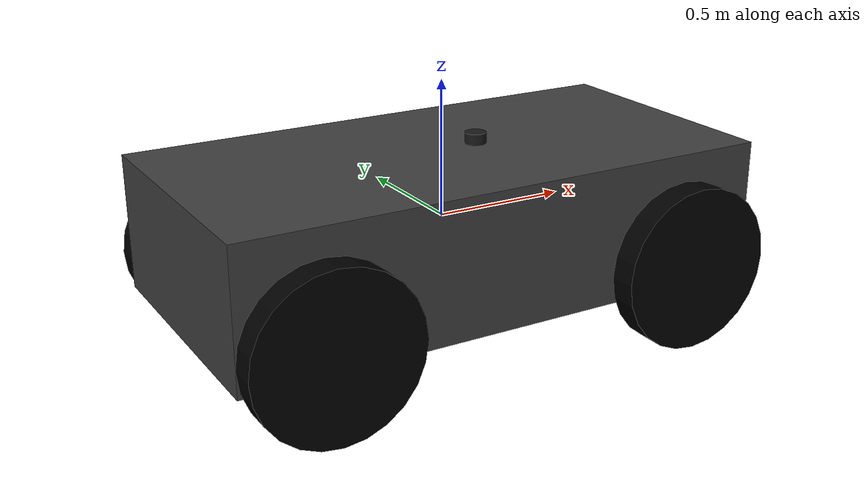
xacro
<?xml version="1.0"?>

<robot name="ackermann_steering_vehicle" xmlns:xacro="http://www.ros.org/wiki/xacro">

  <!-- Arguments -->
  <xacro:arg name="body_length" default="2.0" />
  <xacro:arg name="body_width" default="1.0" />
  <xacro:arg name="body_height" default="0.5" />
  <xacro:arg name="body_density" default="1000.0" />
  <xacro:arg name="wheel_radius" default="0.3" />
  <xacro:arg name="wheel_width" default="0.1" />
  <xacro:arg name="wheel_density" default="1000.0" />
  <xacro:arg name="max_steering_angle" default="0.6108" />
  <xacro:arg name="max_steering_angular_velocity" default="1.570796" />
  <xacro:arg name="max_steering_effort" default="1.0" />
  <xacro:arg name="max_velocity" default="1.0" />
  <xacro:arg name="max_effort" default="10.0" />

  <xacro:arg name="lidar_height" default="0.05" />
  <xacro:arg name="lidar_radius" default="0.04" />
  <xacro:arg name="lidar_update_rate" default="10.0" />
  <xacro:arg name="lidar_samples" default="720" />
  <xacro:arg name="lidar_min_angle" default="-3.14159265" />
  <xacro:arg name="lidar_max_angle" default="3.14159265" />
  <xacro:arg name="lidar_min_range" default="0.10" />
  <xacro:arg name="lidar_max_range" default="30.0" />

  <!-- Mathematical Constants -->
  <xacro:property name="PI" value="3.14159265"/>

  <!-- Vehicle Properties -->
  <xacro:property name="body_length" value="$(arg body_length)"/>
  <xacro:property name="body_width" value="$(arg body_width)"/>
  <xacro:property name="body_height" value="$(arg body_height)"/>
  <xacro:property name="body_density" value="$(arg body_density)"/>
  <xacro:property name="wheel_radius" value="$(arg wheel_radius)"/>
  <xacro:property name="wheel_width" value="$(arg wheel_width)"/>
  <xacro:property name="wheel_density" value="$(arg wheel_density)"/>
  <xacro:property name="max_steering_angle" value="$(arg max_steering_angle)"/>
  <xacro:property name="max_steering_angular_velocity" value="$(arg max_steering_angular_velocity)"/>
  <xacro:property name="max_steering_effort" value="$(arg max_steering_effort)"/>
  <xacro:property name="max_velocity" value="$(arg max_velocity)"/>
  <xacro:property name="max_effort" value="$(arg max_effort)"/>

  <xacro:property name="body_mass" value="${body_density * body_length * body_height * body_width}"/>
  <xacro:property name="body_inertia_x" value="${1.0/12.0 * body_mass * (body_height*body_height + body_width*body_width)}"/>
  <xacro:property name="body_inertia_y" value="${1.0/12.0 * body_mass * (body_length*body_length + body_height*body_height)}"/>
  <xacro:property name="body_inertia_z" value="${1.0/12.0 * body_mass * (body_length*body_length + body_width*body_width)}"/>
  <xacro:property name="wheel_separation" value="${body_width + wheel_width}"/>
  <xacro:property name="wheel_offset" value="${body_length/2 - wheel_radius}"/>
  <xacro:property name="wheel_mass" value="${wheel_density * PI * wheel_radius * wheel_radius * wheel_width}"/>
  <xacro:property name="wheel_inertia_x" value="${1.0/12.0 * wheel_mass * (3*wheel_radius*wheel_radius + wheel_width*wheel_width)}"/>
  <xacro:property name="wheel_inertia_y" value="${1.0/12.0 * wheel_mass * (3*wheel_radius*wheel_radius + wheel_width*wheel_width)}"/>
  <xacro:property name="wheel_inertia_z" value="${1.0/2.0 * wheel_mass * wheel_radius * wheel_radius}"/>
  <xacro:property name="max_wheel_angular_velocity" value="${max_velocity / wheel_radius}"/>

  <xacro:property name="lidar_height" value="$(arg lidar_height)"/>
  <xacro:property name="lidar_radius" value="$(arg lidar_radius)"/>
  <xacro:property name="lidar_update_rate" value="$(arg lidar_update_rate)"/>
  <xacro:property name="lidar_samples" value="$(arg lidar_samples)"/>
  <xacro:property name="lidar_min_angle" value="$(arg lidar_min_angle)"/>
  <xacro:property name="lidar_max_angle" value="$(arg lidar_max_angle)"/>
  <xacro:property name="lidar_min_range" value="$(arg lidar_min_range)"/>
  <xacro:property name="lidar_max_range" value="$(arg lidar_max_range)"/>

  <!-- Links -->

  <!-- Body Link -->
  <link name="body_link">
    <visual>
      <origin xyz="0.0 0.0 0.0" rpy="0.0 0.0 0.0"/>
      <geometry>
        <box size="${body_length} ${body_width} ${body_height}"/>
      </geometry>
      <material name="body_material">
        <color rgba="0.25 0.25 0.25 1.0"/>
      </material>
    </visual>
    <collision>
      <origin xyz="0.0 0.0 0.0" rpy="0.0 0.0 0.0"/>
      <geometry>
        <box size="${body_length} ${body_width} ${body_height}"/>
      </geometry>
    </collision>
    <inertial>
      <mass value="${body_mass}"/>
      <inertia ixx="${body_inertia_x}" ixy="0.0" ixz="0.0" iyy="${body_inertia_y}" iyz="0" izz="${body_inertia_z}"/>
      <origin xyz="0 0 0" rpy="0 0 0"/>
    </inertial>
  </link>

  <!-- Front Left Wheel -->
  <link name="front_left_wheel_link">
    <visual>
      <origin xyz="0.0 0.0 0.0" rpy="1.570795 0.0 0.0"/>
      <geometry>
        <cylinder radius="${wheel_radius}" length="${wheel_width}"/>
      </geometry>
      <material name="wheel_material">
        <color rgba="0.0 0.0 0.0 1.0"/>
      </material>
    </visual>
    <collision>
      <origin xyz="0.0 0.0 0.0" rpy="1.570795 0.0 0.0"/>
      <geometry>
        <cylinder radius="${wheel_radius}" length="${wheel_width}"/>
      </geometry>
    </collision>
    <inertial>
      <mass value="${wheel_mass}"/>
      <inertia ixx="${wheel_inertia_x}" ixy="0.0" ixz="0.0" iyy="${wheel_inertia_y}" iyz="0" izz="${wheel_inertia_z}"/>
      <origin xyz="0.0 0.0 0.0" rpy="1.570795 0.0 0.0"/>
    </inertial>
  </link>

    <!-- Front Left Wheel Steering -->
  <link name="front_left_steering_link">
    <visual>
      <origin xyz="0.0 0.0 0.0" rpy="1.570795 0.0 0.0"/>
      <geometry>
        <cylinder length="0.001" radius="0.01"/>
      </geometry>
      <material name="wheel_material">
        <color rgba="0.0 0.0 0.0 1.0"/>
      </material>
    </visual>
    <collision>
      <origin xyz="0.0 0.0 0.0" rpy="1.570795 0.0 0.0"/>
      <geometry>
        <cylinder length="0.001" radius="0.01"/>
      </geometry>
    </collision>
    <inertial>
      <mass value="0.01"/>
      <inertia ixx="0.0" ixy="0.0" ixz="0.0" iyy="0.0" iyz="0.0" izz="0.0"/>
      <origin xyz="0.0 0.0 0.0" rpy="1.570795 0.0 0.0"/>
    </inertial>
  </link>

  <!-- Front Right Wheel -->
  <link name="front_right_wheel_link">
    <visual>
      <origin xyz="0.0 0.0 0.0" rpy="1.570795 0.0 0.0"/>
      <geometry>
        <cylinder radius="${wheel_radius}" length="${wheel_width}"/>
      </geometry>
      <material name="wheel_material">
        <color rgba="0.0 0.0 0.0 1.0"/>
      </material>
    </visual>
    <collision>
      <origin xyz="0.0 0.0 0.0" rpy="1.570795 0.0 0.0"/>
      <geometry>
        <cylinder radius="${wheel_radius}" length="${wheel_width}"/>
      </geometry>
    </collision>
    <inertial>
      <mass value="${wheel_mass}"/>
      <inertia ixx="${wheel_inertia_x}" ixy="0.0" ixz="0.0" iyy="${wheel_inertia_y}" iyz="0" izz="${wheel_inertia_z}"/>
      <origin xyz="0.0 0.0 0.0" rpy="1.570795 0.0 0.0"/>
    </inertial>
  </link>

  <!-- Front Right Wheel Steering -->
  <link name="front_right_steering_link">
    <visual>
      <origin xyz="0.0 0.0 0.0" rpy="1.570795 0.0 0.0"/>
      <geometry>
        <cylinder length="0.001" radius="0.01"/>
      </geometry>
      <material name="wheel_material">
        <color rgba="0.0 0.0 0.0 1.0"/>
      </material>
    </visual>
    <collision>
      <origin xyz="0.0 0.0 0.0" rpy="1.570795 0.0 0.0"/>
      <geometry>
        <cylinder length="0.001" radius="0.01"/>
      </geometry>
    </collision>
    <inertial>
      <mass value="0.01"/>
      <inertia ixx="0.0" ixy="0.0" ixz="0.0" iyy="0.0" iyz="0.0" izz="0.0"/>
      <origin xyz="0.0 0.0 0.0" rpy="1.570795 0.0 0.0"/>
    </inertial>
  </link>

  <!-- Rear Left Wheel -->
  <link name="rear_left_wheel_link">
    <visual>
      <origin xyz="0.0 0.0 0.0" rpy="1.570795 0.0 0.0"/>
      <geometry>
        <cylinder radius="${wheel_radius}" length="${wheel_width}"/>
      </geometry>
      <material name="wheel_material">
        <color rgba="0.0 0.0 0.0 1.0"/>
      </material>
    </visual>
    <collision>
      <origin xyz="0.0 0.0 0.0" rpy="1.570795 0.0 0.0"/>
      <geometry>
        <cylinder radius="${wheel_radius}" length="${wheel_width}"/>
      </geometry>
    </collision>
    <inertial>
      <mass value="2"/>
      <inertia ixx="${wheel_inertia_x}" ixy="0.0" ixz="0.0" iyy="${wheel_inertia_y}" iyz="0" izz="${wheel_inertia_z}"/>
      <origin xyz="0.0 0.0 0.0" rpy="1.570795 0.0 0.0"/>
    </inertial>
  </link>

  <!-- Rear Right Wheel -->
  <link name="rear_right_wheel_link">
    <visual>
      <origin xyz="0.0 0.0 0.0" rpy="1.570795 0.0 0.0"/>
      <geometry>
        <cylinder radius="${wheel_radius}" length="${wheel_width}"/>
      </geometry>
      <material name="wheel_material">
        <color rgba="0.0 0.0 0.0 1.0"/>
      </material>
    </visual>
    <collision>
      <origin xyz="0.0 0.0 0.0" rpy="1.570795 0.0 0.0"/>
      <geometry>
        <cylinder radius="${wheel_radius}" length="${wheel_width}"/>
      </geometry>
    </collision>
    <inertial>
      <mass value="2"/>
      <inertia ixx="${wheel_inertia_x}" ixy="0.0" ixz="0.0" iyy="${wheel_inertia_y}" iyz="0" izz="${wheel_inertia_z}"/>
      <origin xyz="0.0 0.0 0.0" rpy="1.570795 0.0 0.0"/>
    </inertial>
  </link>

    <!-- Lidar -->

  <link name="lidar_link">
    <visual>
      <origin xyz="0 0 0" rpy="0 0 0"/>
      <geometry>
        <cylinder radius="${lidar_radius}" length="0.04"/>
      </geometry>
      <material name="lidar_material">
        <color rgba="0.1 0.1 0.1 1.0"/>
      </material>
    </visual>

    <collision>
      <origin xyz="0 0 0" rpy="0 0 0"/>
      <geometry>
        <cylinder radius="${lidar_radius}" length="0.06"/>
      </geometry>
    </collision>

    <inertial>
      <mass value="0.1"/>
      <origin xyz="0 0 0" rpy="0 0 0"/>
      <inertia ixx="1e-4" ixy="0" ixz="0" iyy="1e-4" iyz="0" izz="1e-4"/>
    </inertial>
  </link>

  <!-- Joints -->

  <!-- Front Left Steering Joint -->
  <joint name="front_left_steering_joint" type="revolute">
    <origin xyz="${wheel_offset} ${wheel_separation/2} -${wheel_radius/2}" rpy="0 0 0"/>
    <parent link="body_link"/>
    <child link="front_left_steering_link"/>
    <axis xyz="0 0 1"/>
    <limit effort="${max_steering_effort}" lower="${-max_steering_angle}" upper="${max_steering_angle}" velocity="${max_steering_angular_velocity}"/>
    <dynamics damping="0.1" friction="0.1"/>
  </joint>

  <!-- Front Left Wheel Joint -->
  <joint name="front_left_wheel_joint" type="continuous">
    <origin xyz="0 0 0" rpy="0 0 0"/>
    <parent link="front_left_steering_link"/>
    <child link="front_left_wheel_link"/>
    <axis xyz="0 1 0"/>
    <limit effort="${max_effort}" velocity="${max_wheel_angular_velocity}"/>
    <dynamics damping="0.1" friction="0.1"/>
  </joint>

  <!-- Front Right Steering Joint -->
  <joint name="front_right_steering_joint" type="revolute">
    <origin xyz="${wheel_offset} ${-wheel_separation/2} -${wheel_radius/2}" rpy="0 0 0"/>
    <parent link="body_link"/>
    <child link="front_right_steering_link"/>
    <axis xyz="0 0 1"/>
    <limit effort="${max_steering_effort}" lower="${-max_steering_angle}" upper="${max_steering_angle}" velocity="${max_steering_angular_velocity}"/>
    <dynamics damping="0.1" friction="0.1"/>
  </joint>

  <!-- Front Right Wheel Joint -->
  <joint name="front_right_wheel_joint" type="continuous">
    <origin xyz="0 0 0" rpy="0 0 0"/>
    <parent link="front_right_steering_link"/>
    <child link="front_right_wheel_link"/>
    <axis xyz="0 1 0"/>
    <limit effort="${max_effort}" velocity="${max_wheel_angular_velocity}"/>
    <dynamics damping="0.1" friction="0.1"/>
  </joint>

  <!-- Rear Left Wheel Joint -->
  <joint name="rear_left_wheel_joint" type="continuous">
    <origin xyz="-${wheel_offset} ${wheel_separation/2} -${wheel_radius/2}" rpy="0 0 0"/>
    <parent link="body_link"/>
    <child link="rear_left_wheel_link"/>
    <axis xyz="0 1 0"/>
    <limit effort="${max_effort}" velocity="${max_wheel_angular_velocity}"/>
    <dynamics damping="0.1" friction="0.1"/>
  </joint>

  <!-- Rear Right Wheel Joint -->
  <joint name="rear_right_wheel_joint" type="continuous">
    <origin xyz="-${wheel_offset} ${-wheel_separation/2} -${wheel_radius/2}" rpy="0 0 0"/>
    <parent link="body_link"/>
    <child link="rear_right_wheel_link"/>
    <axis xyz="0 1 0"/>
    <limit effort="${max_effort}" velocity="${max_wheel_angular_velocity}"/>
    <dynamics damping="0.1" friction="0.1"/>
  </joint>

  <joint name="lidar_joint" type="fixed">
    <!-- Place on top of body center -->
    <origin xyz="0.14 0.0 ${body_height/2 + 0.02}" rpy="0 0 0"/>
    <parent link="body_link"/>
    <child link="lidar_link"/>
  </joint>

  <!-- Gazebo Parameters -->
  <gazebo reference="body_link">
    <mu1>0.0001</mu1>
    <mu2>0.0001</mu2>
  </gazebo>

  <gazebo reference="front_right_wheel_link">
    <mu1>100.0</mu1>
    <mu2>100.0</mu2>
  </gazebo>

  <gazebo reference="front_left_wheel_link">
    <mu1>100.0</mu1>
    <mu2>100.0</mu2>
  </gazebo>

  <gazebo reference="rear_right_wheel_link">
    <mu1>100.0</mu1>
    <mu2>100.0</mu2>
  </gazebo>

  <gazebo reference="rear_left_wheel_link">
    <mu1>100.0</mu1>
    <mu2>100.0</mu2>
  </gazebo>

  <gazebo reference="lidar_link">
    <sensor type="gpu_lidar" name="gpu_lidar">
      <pose relative_to='lidar_link'>0 0 0 0 0 0 </pose>
      <update_rate>${lidar_update_rate}</update_rate>
      <visualize>true</visualize>
      <topic>lidar</topic>

      <lidar>
        <scan>
          <horizontal>
            <samples>${lidar_samples}</samples>
            <resolution>1</resolution>
            <min_angle>${lidar_min_angle}</min_angle>
            <max_angle>${lidar_max_angle}</max_angle>
          </horizontal>
        </scan>

        <range>
          <min>${lidar_min_range}</min>
          <max>${lidar_max_range}</max>
          <resolution>0.01</resolution>
        </range>

        <noise>
          <type>gaussian</type>
          <mean>0.0</mean>
          <stddev>0.01</stddev>
        </noise>
      </lidar>
    </sensor>
  </gazebo>

  <!-- Gazebo Control -->
  <ros2_control name="control" type="system">
    <hardware>
      <plugin>gz_ros2_control/GazeboSimSystem</plugin>
    </hardware>

    <joint name="front_left_steering_joint">
      <command_interface name="position">
        <param name="min">${-max_steering_angle}</param>
        <param name="max">${max_steering_angle}</param>
      </command_interface>

      <state_interface name="position"/>
      <state_interface name="velocity"/>
      <state_interface name="effort"/>
    </joint>

    <joint name="front_right_steering_joint">
      <command_interface name="position">
        <param name="min">${-max_steering_angle}</param>
        <param name="max">${max_steering_angle}</param>
      </command_interface>

      <state_interface name="position"/>
      <state_interface name="velocity"/>
      <state_interface name="effort"/>
    </joint>

    <joint name="rear_left_wheel_joint">
      <command_interface name="velocity">
        <param name="min">${-max_wheel_angular_velocity}</param>
        <param name="max">${max_wheel_angular_velocity}</param>
      </command_interface>

      <state_interface name="position"/>
      <state_interface name="velocity"/>
      <state_interface name="effort"/>
    </joint>

    <joint name="rear_right_wheel_joint">
      <command_interface name="velocity">
        <param name="min">${-max_wheel_angular_velocity}</param>
        <param name="max">${max_wheel_angular_velocity}</param>
      </command_interface>

      <state_interface name="position"/>
      <state_interface name="velocity"/>
      <state_interface name="effort"/>
    </joint>
  </ros2_control>

  <!-- Gazebo Plugins -->
  <gazebo>
    <plugin filename="gz-sim-joint-state-publisher-system" name="gz::sim::systems::JointStatePublisher">
      <topic>joint_states</topic>
      <joint_name>front_left_steering_joint</joint_name>
      <joint_name>front_right_steering_joint</joint_name>
      <joint_name>front_left_wheel_joint</joint_name>
      <joint_name>front_right_wheel_joint</joint_name>
      <joint_name>rear_left_wheel_joint</joint_name>
      <joint_name>rear_right_wheel_joint</joint_name>
    </plugin>

    <plugin filename="gz_ros2_control-system" name="gz_ros2_control::GazeboSimROS2ControlPlugin">
      <parameters>$(find gazebo_ackermann_steering_vehicle)/config/gz_ros2_control.yaml</parameters>
    </plugin>

    <plugin filename="gz-sim-sensors-system" name="gz::sim::systems::Sensors">
      <render_engine>ogre2</render_engine>
    </plugin>
  </gazebo>

</robot>
